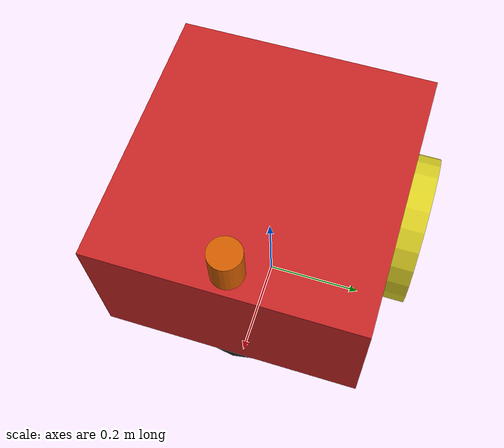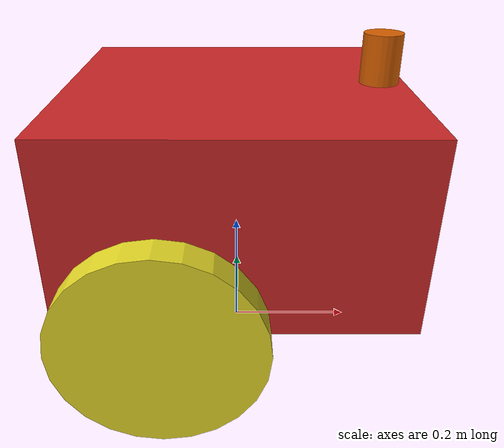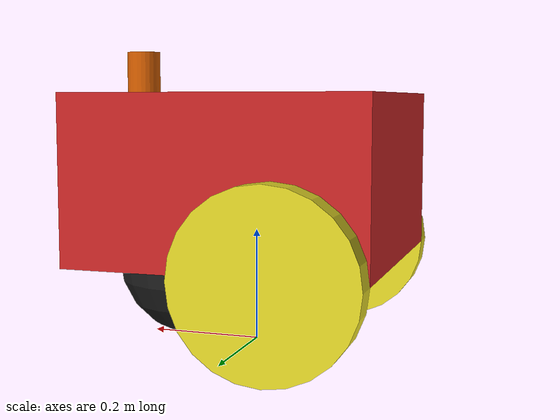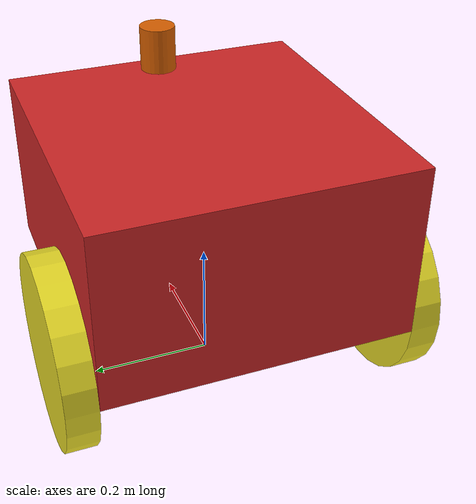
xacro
<?xml version="1.0"?>
<robot name="differential_drive_robot" xmlns:xacro="http://www.ros.org/wiki/xacro">

  <!--           Geometry and constants                -->

  <!-- Pi Constant-->
  <xacro:property name="pi_const" value="3.14159265"/>

  <!-- Body Dimensions -->
  <xacro:property name="a" value="0.52"/>
  <xacro:property name="b" value="0.29"/>
  <xacro:property name="c" value="0.5"/>

  <!-- Wheel and caster dimensions -->
  <!-- Wheel and caster r -->
  <xacro:property name="r" value="0.155"/>

  <!-- Wheel height -->
  <xacro:property name="d" value="0.05"/>

  <xacro:property name="s1" value="${b/2+r}"/>
  <xacro:property name="s2" value="${(a/2)-r}"/>
  <xacro:property name="s3" value="${(a/2)-r}"/>
  <xacro:property name="s4" value="${c/2+d/2}"/>

  <!--           Mass and inertia                      -->

  <!-- Material density -->
  <xacro:property name="d1" value="2710.0"/>
  <xacro:property name="d2" value="2710.0"/>
  <xacro:property name="d3" value="2710.0"/>

  <!-- Robot body mass, wheel mass, caster mass -->
  <xacro:property name="m1" value="60"/>
  <xacro:property name="m2" value="1"/>
  <xacro:property name="m3" value="0.5"/>

  <!-- Moments of inertia of the robot body -->
  <xacro:property name="Ix_body" value="${(1/12)*m1*(b*b+c*c) }" />
  <xacro:property name="Iy_body" value="${(1/12)*m1*(a*a+b*b) }" />
  <xacro:property name="Iz_body" value="${(1/12)*m1*(a*a+c*c) }" />

  <!-- Moments of inertia of the robot body -->
  <xacro:property name="Iz_wheel" value="${0.5*m2*r*r}" />
  <xacro:property name="I_wheel" value="${(1.0/12.0)*m2*(3.0*r*r+d*d)}" />

  <!-- Moments of inertia of the robot body -->
  <xacro:property name="I_caster" value="${(2.0/5.0)*m3*r*r}" />

  <!-- This macro defines the complete intertial section of the robot body -->
  <xacro:macro name="inertia_body">
    <inertial>
      <origin rpy="0 0 0" xyz="0 0 ${s1}"/>
      <mass value="${m1}"/>
      <inertia ixx="${Ix_body}" ixy="0.0" ixz="0.0" iyy="${Iy_body}" iyz="0.0" izz="${Iz_body}" />
    </inertial>
  </xacro:macro>

  <!-- This macro defines the complete intertial section of the wheel -->
  <xacro:macro name="inertia_wheel">
    <inertial>
      <origin rpy="1.570795 0 0" xyz="0 0 0"/>
      <mass value="${m2}"/>
      <inertia ixx="${I_wheel}" ixy="0.0" ixz="0.0" iyy="${I_wheel}" iyz="0.0" izz="${Iz_wheel}" />
    </inertial>
  </xacro:macro>

  <!-- This macro defines the complete intertial section of the caster -->
  <xacro:macro name="inertia_caster">
    <inertial>
      <origin rpy="0 0 0" xyz="0 0 0"/>
      <mass value="${m3}"/>
      <inertia ixx="${I_caster}" ixy="0.0" ixz="0.0" iyy="${I_caster}" iyz="0.0" izz="${I_caster}" />
    </inertial>
  </xacro:macro>

  <!--           Include additional files              -->
  <xacro:include filename="$(find differential_robot_simulation)/model/robot.gazebo"/>

  <!--           DEFINITION OF LINKS AND JOINTS        -->

  <link name="base_footprint"> </link>
  <joint name="body_link_joint" type="fixed">
    <parent link="base_footprint"/>
    <child link="body_link"/>
  </joint>

  <link name="body_link">
    <visual>
      <geometry>
        <box size="${a} ${c} ${b}"/>
      </geometry>
      <origin rpy="0 0 0" xyz="0 0 ${s1}"/>
    </visual>

    <collision>
      <geometry>
        <box size="${a} ${c} ${b}"/>
      </geometry>
      <origin rpy="0 0 0" xyz="0 0 ${s1}"/>
    </collision>

    <xacro:inertia_body/>
  </link>

  <joint name="wheel1_joint" type="continuous">
    <parent link="body_link"/>
    <child link="wheel1_link"/>
    <origin xyz="${-s2} ${-s4} ${r}" rpy="${pi_const / 2.0} 0 0"/>
    <axis xyz="0 0 -1"/>
    <limit effort="50000" velocity="10"/>
    <dynamics damping="1.0" friction="1.0"/>
  </joint>

  <link name="wheel1_link">
    <visual>
      <origin rpy="0 0 0" xyz="0 0 0"/>
      <geometry>
        <cylinder length="${d}" radius="${r}"/>
      </geometry>
    </visual>

    <collision>
      <origin rpy="0 0 0" xyz="0 0 0"/>
      <geometry>
        <cylinder length="${d}" radius="${r}"/>
      </geometry>
    </collision>

    <xacro:inertia_wheel/>
  </link>

  <joint name="wheel2_joint" type="continuous">
    <parent link="body_link"/>
    <child link="wheel2_link"/>
    <origin xyz="${-s2} ${s4} ${r}" rpy="${-pi_const / 2.0} 0 0"/>
    <axis xyz="0 0 1"/>
    <limit effort="50000" velocity="10"/>
    <dynamics damping="1.0" friction="1.0"/>
  </joint>

  <link name="wheel2_link">
    <visual>
      <origin rpy="0 0 0" xyz="0 0 0"/>
      <geometry>
        <cylinder length="${d}" radius="${r}"/>
      </geometry>
    </visual>

    <collision>
      <origin rpy="0 0 0" xyz="0 0 0"/>
      <geometry>
        <cylinder length="${d}" radius="${r}"/>
      </geometry>
    </collision>

    <xacro:inertia_wheel/>
  </link>

  <joint name="caster_joint" type="fixed">
    <parent link="body_link"/>
    <child link="caster_link"/>
    <origin xyz="${s3} 0 ${r}"/>
  </joint>

  <link name="caster_link">
    <visual>
      <origin xyz="0 0 0"/>
      <geometry>
        <sphere radius="${r}"/>
      </geometry>
    </visual>

    <collision>
      <origin xyz="0 0 0"/>
      <geometry>
        <sphere radius="${r}"/>
      </geometry>
    </collision>

    <xacro:inertia_caster/>
  </link>

  <joint name="lidar_joint" type="fixed">
    <origin xyz="0.22 0 ${b+r+0.065}" rpy="0 0 0"/>
    <parent link="body_link"/>
    <child link="lidar_link"/>
    <axis xyz="0 0 1" rpy="0 0 0"/>
  </joint>

  <link name='lidar_link'>
    <visual>
      <origin xyz="0 0 -0.03" rpy="0 0 0"/>
      <geometry>
        <cylinder length="0.08" radius="0.03"/>
      </geometry>
    </visual>

    <collision>
      <origin xyz="0 0 -0.03" rpy="0 0 0"/>
      <geometry>
        <cylinder length="0.08" radius="0.03"/>
      </geometry>
    </collision>

    <inertial>
      <mass value="1e-6"/>
      <inertia ixx="1e-6" ixy="0" ixz="0" iyy="1e-6" iyz="0" izz="1e-6"/>
    </inertial>
  </link>
</robot>
